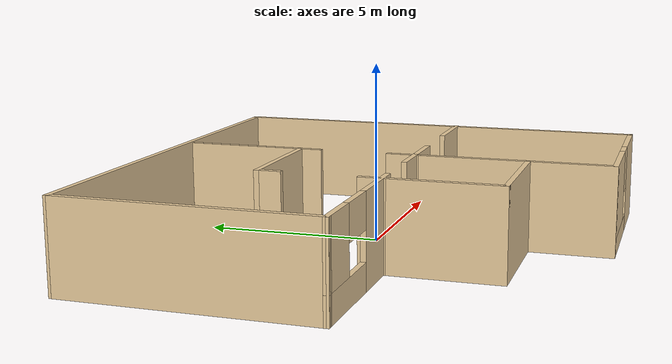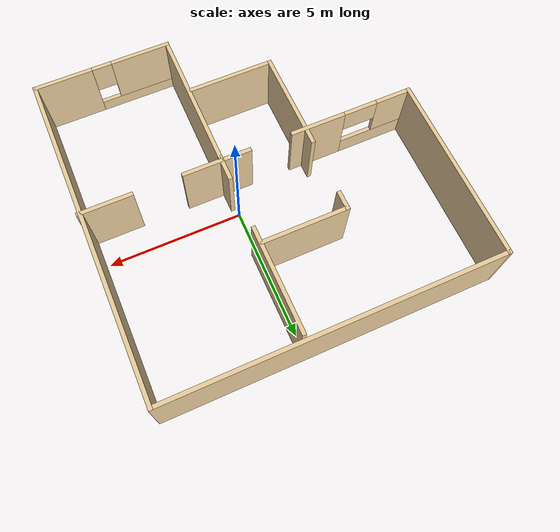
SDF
<?xml version='1.0'?>
<sdf version='1.6'>
  <model name='Building'>
    <pose frame=''>-0.957855 -0.363744 0 0 -0 0</pose>
    <link name='Wall_38'>
      <collision name='Wall_38_Collision'>
        <geometry>
          <box>
            <size>12.5 0.15 2.5</size>
          </box>
        </geometry>
        <pose frame=''>0 0 1.25 0 -0 0</pose>
      </collision>
      <visual name='Wall_38_Visual'>
        <pose frame=''>0 0 1.25 0 -0 0</pose>
        <geometry>
          <box>
            <size>12.5 0.15 2.5</size>
          </box>
        </geometry>
        <material>
          <script>
            <uri>file://media/materials/scripts/gazebo.material</uri>
            <name>Gazebo/Grey</name>
          </script>
          <ambient>0.921569 0.807843 0.615686 1</ambient>
        </material>
        <meta>
          <layer>0</layer>
        </meta>
      </visual>
      <pose frame=''>0.000267 6.17471 0 0 -0 0</pose>
    </link>
    <link name='Wall_41'>
      <collision name='Wall_41_Collision'>
        <geometry>
          <box>
            <size>12.5 0.15 2.5</size>
          </box>
        </geometry>
        <pose frame=''>0 0 1.25 0 -0 0</pose>
      </collision>
      <visual name='Wall_41_Visual'>
        <pose frame=''>0 0 1.25 0 -0 0</pose>
        <geometry>
          <box>
            <size>12.5 0.15 2.5</size>
          </box>
        </geometry>
        <material>
          <script>
            <uri>file://media/materials/scripts/gazebo.material</uri>
            <name>Gazebo/Grey</name>
          </script>
          <ambient>0.921569 0.807843 0.615686 1</ambient>
        </material>
        <meta>
          <layer>0</layer>
        </meta>
      </visual>
      <pose frame=''>6.17527 -0.000294 0 0 -0 -1.5708</pose>
    </link>
    <link name='Wall_42'>
      <pose frame=''>3.6309 -6.17529 0 0 -0 3.14159</pose>
      <visual name='Wall_42_Visual_0'>
        <pose frame=''>-1.50782 0 1.25 0 -0 0</pose>
        <geometry>
          <box>
            <size>2.22309 0.15 2.5</size>
          </box>
        </geometry>
        <material>
          <script>
            <uri>file://media/materials/scripts/gazebo.material</uri>
            <name>Gazebo/Grey</name>
          </script>
          <ambient>0.921569 0.807843 0.615686 1</ambient>
        </material>
        <meta>
          <layer>0</layer>
        </meta>
      </visual>
      <collision name='Wall_42_Collision_0'>
        <geometry>
          <box>
            <size>2.22309 0.15 2.5</size>
          </box>
        </geometry>
        <pose frame=''>-1.50782 0 1.25 0 -0 0</pose>
      </collision>
      <visual name='Wall_42_Visual_1'>
        <pose frame=''>1.11154 0 0.25 0 -0 0</pose>
        <geometry>
          <box>
            <size>3.01564 0.15 0.5</size>
          </box>
        </geometry>
        <material>
          <script>
            <uri>file://media/materials/scripts/gazebo.material</uri>
            <name>Gazebo/Grey</name>
          </script>
          <ambient>0.921569 0.807843 0.615686 1</ambient>
        </material>
        <meta>
          <layer>0</layer>
        </meta>
      </visual>
      <collision name='Wall_42_Collision_1'>
        <geometry>
          <box>
            <size>3.01564 0.15 0.5</size>
          </box>
        </geometry>
        <pose frame=''>1.11154 0 0.25 0 -0 0</pose>
      </collision>
      <visual name='Wall_42_Visual_2'>
        <pose frame=''>1.48516 0 1.5 0 -0 0</pose>
        <geometry>
          <box>
            <size>2.2684 0.15 2</size>
          </box>
        </geometry>
        <material>
          <script>
            <uri>file://media/materials/scripts/gazebo.material</uri>
            <name>Gazebo/Grey</name>
          </script>
          <ambient>0.921569 0.807843 0.615686 1</ambient>
        </material>
        <meta>
          <layer>0</layer>
        </meta>
      </visual>
      <collision name='Wall_42_Collision_2'>
        <geometry>
          <box>
            <size>2.2684 0.15 2</size>
          </box>
        </geometry>
        <pose frame=''>1.48516 0 1.5 0 -0 0</pose>
      </collision>
      <visual name='Wall_42_Visual_3'>
        <pose frame=''>-0.022658 0 1.9 0 -0 0</pose>
        <geometry>
          <box>
            <size>0.747237 0.15 1.2</size>
          </box>
        </geometry>
        <material>
          <script>
            <uri>file://media/materials/scripts/gazebo.material</uri>
            <name>Gazebo/Grey</name>
          </script>
          <ambient>0.921569 0.807843 0.615686 1</ambient>
        </material>
        <meta>
          <layer>0</layer>
        </meta>
      </visual>
      <collision name='Wall_42_Collision_3'>
        <geometry>
          <box>
            <size>0.747237 0.15 1.2</size>
          </box>
        </geometry>
        <pose frame=''>-0.022658 0 1.9 0 -0 0</pose>
      </collision>
    </link>
    <link name='Wall_43'>
      <collision name='Wall_43_Collision'>
        <geometry>
          <box>
            <size>5.5 0.15 2.5</size>
          </box>
        </geometry>
        <pose frame=''>0 0 1.25 0 -0 0</pose>
      </collision>
      <visual name='Wall_43_Visual'>
        <pose frame=''>0 0 1.25 0 -0 0</pose>
        <geometry>
          <box>
            <size>5.5 0.15 2.5</size>
          </box>
        </geometry>
        <material>
          <script>
            <uri>file://media/materials/scripts/gazebo.material</uri>
            <name>Gazebo/Grey</name>
          </script>
          <ambient>0.921569 0.807843 0.615686 1</ambient>
        </material>
        <meta>
          <layer>0</layer>
        </meta>
      </visual>
      <pose frame=''>1.08348 -3.50029 0 0 -0 1.56983</pose>
    </link>
    <link name='Wall_47'>
      <pose frame=''>-3.93129 -0.71225 0 0 -0 3.14159</pose>
      <visual name='Wall_47_Visual_0'>
        <pose frame=''>-1.33207 0 1.25 0 -0 0</pose>
        <geometry>
          <box>
            <size>2.09448 0.15 2.5</size>
          </box>
        </geometry>
        <material>
          <script>
            <uri>file://media/materials/scripts/gazebo.material</uri>
            <name>Gazebo/Grey</name>
          </script>
          <ambient>0.921569 0.807843 0.615686 1</ambient>
        </material>
        <meta>
          <layer>0</layer>
        </meta>
      </visual>
      <collision name='Wall_47_Collision_0'>
        <geometry>
          <box>
            <size>2.09448 0.15 2.5</size>
          </box>
        </geometry>
        <pose frame=''>-1.33207 0 1.25 0 -0 0</pose>
      </collision>
      <visual name='Wall_47_Visual_1'>
        <pose frame=''>1.04724 0 0.375 0 -0 0</pose>
        <geometry>
          <box>
            <size>2.66414 0.15 0.75</size>
          </box>
        </geometry>
        <material>
          <script>
            <uri>file://media/materials/scripts/gazebo.material</uri>
            <name>Gazebo/Grey</name>
          </script>
          <ambient>0.921569 0.807843 0.615686 1</ambient>
        </material>
        <meta>
          <layer>0</layer>
        </meta>
      </visual>
      <collision name='Wall_47_Collision_1'>
        <geometry>
          <box>
            <size>2.66414 0.15 0.75</size>
          </box>
        </geometry>
        <pose frame=''>1.04724 0 0.375 0 -0 0</pose>
      </collision>
      <visual name='Wall_47_Visual_2'>
        <pose frame=''>1.68374 0 1.625 0 -0 0</pose>
        <geometry>
          <box>
            <size>1.39114 0.15 1.75</size>
          </box>
        </geometry>
        <material>
          <script>
            <uri>file://media/materials/scripts/gazebo.material</uri>
            <name>Gazebo/Grey</name>
          </script>
          <ambient>0.921569 0.807843 0.615686 1</ambient>
        </material>
        <meta>
          <layer>0</layer>
        </meta>
      </visual>
      <collision name='Wall_47_Collision_2'>
        <geometry>
          <box>
            <size>1.39114 0.15 1.75</size>
          </box>
        </geometry>
        <pose frame=''>1.68374 0 1.625 0 -0 0</pose>
      </collision>
      <visual name='Wall_47_Visual_3'>
        <pose frame=''>0.351672 0 2.025 0 -0 0</pose>
        <geometry>
          <box>
            <size>1.273 0.15 0.95</size>
          </box>
        </geometry>
        <material>
          <script>
            <uri>file://media/materials/scripts/gazebo.material</uri>
            <name>Gazebo/Grey</name>
          </script>
          <ambient>0.921569 0.807843 0.615686 1</ambient>
        </material>
        <meta>
          <layer>0</layer>
        </meta>
      </visual>
      <collision name='Wall_47_Collision_3'>
        <geometry>
          <box>
            <size>1.273 0.15 0.95</size>
          </box>
        </geometry>
        <pose frame=''>0.351672 0 2.025 0 -0 0</pose>
      </collision>
    </link>
    <link name='Wall_48'>
      <collision name='Wall_48_Collision'>
        <geometry>
          <box>
            <size>7.03723 0.15 2.5</size>
          </box>
        </geometry>
        <pose frame=''>0 0 1.25 0 -0 0</pose>
      </collision>
      <visual name='Wall_48_Visual'>
        <pose frame=''>0 0 1.25 0 -0 0</pose>
        <geometry>
          <box>
            <size>7.03723 0.15 2.5</size>
          </box>
        </geometry>
        <material>
          <script>
            <uri>file://media/materials/scripts/gazebo.material</uri>
            <name>Gazebo/Grey</name>
          </script>
          <ambient>0.921569 0.807843 0.615686 1</ambient>
        </material>
        <meta>
          <layer>0</layer>
        </meta>
      </visual>
      <pose frame=''>-6.20517 2.73123 0 0 -0 1.56196</pose>
    </link>
    <link name='Wall_50'>
      <collision name='Wall_50_Collision'>
        <geometry>
          <box>
            <size>3.25 0.15 2.5</size>
          </box>
        </geometry>
        <pose frame=''>0 0 1.25 0 -0 0</pose>
      </collision>
      <visual name='Wall_50_Visual'>
        <pose frame=''>0 0 1.25 0 -0 0</pose>
        <geometry>
          <box>
            <size>3.25 0.15 2.5</size>
          </box>
        </geometry>
        <material>
          <script>
            <uri>file://media/materials/scripts/gazebo.material</uri>
            <name>Gazebo/Grey</name>
          </script>
          <ambient>0.921569 0.807843 0.615686 1</ambient>
        </material>
        <meta>
          <layer>0</layer>
        </meta>
      </visual>
      <pose frame=''>-2.12379 -2.30975 0 0 -0 -1.5708</pose>
    </link>
    <link name='Wall_51'>
      <collision name='Wall_51_Collision'>
        <geometry>
          <box>
            <size>3.25 0.15 2.5</size>
          </box>
        </geometry>
        <pose frame=''>0 0 1.25 0 -0 0</pose>
      </collision>
      <visual name='Wall_51_Visual'>
        <pose frame=''>0 0 1.25 0 -0 0</pose>
        <geometry>
          <box>
            <size>3.25 0.15 2.5</size>
          </box>
        </geometry>
        <material>
          <script>
            <uri>file://media/materials/scripts/gazebo.material</uri>
            <name>Gazebo/Grey</name>
          </script>
          <ambient>0.921569 0.807843 0.615686 1</ambient>
        </material>
        <meta>
          <layer>0</layer>
        </meta>
      </visual>
      <pose frame=''>-0.573789 -3.85975 0 0 -0 0</pose>
    </link>
    <link name='Wall_53'>
      <collision name='Wall_53_Collision'>
        <geometry>
          <box>
            <size>0.75 0.15 2.5</size>
          </box>
        </geometry>
        <pose frame=''>0 0 1.25 0 -0 0</pose>
      </collision>
      <visual name='Wall_53_Visual'>
        <pose frame=''>0 0 1.25 0 -0 0</pose>
        <geometry>
          <box>
            <size>0.75 0.15 2.5</size>
          </box>
        </geometry>
        <material>
          <script>
            <uri>file://media/materials/scripts/gazebo.material</uri>
            <name>Gazebo/Grey</name>
          </script>
          <ambient>0.921569 0.807843 0.615686 1</ambient>
        </material>
        <meta>
          <layer>0</layer>
        </meta>
      </visual>
      <pose frame=''>-2.12379 -0.459747 0 0 -0 1.5708</pose>
    </link>
    <link name='Wall_60'>
      <collision name='Wall_60_Collision'>
        <geometry>
          <box>
            <size>1 0.15 2.5</size>
          </box>
        </geometry>
        <pose frame=''>0 0 1.25 0 -0 0</pose>
      </collision>
      <visual name='Wall_60_Visual'>
        <pose frame=''>0 0 1.25 0 -0 0</pose>
        <geometry>
          <box>
            <size>1 0.15 2.5</size>
          </box>
        </geometry>
        <material>
          <script>
            <uri>file://media/materials/scripts/gazebo.material</uri>
            <name>Gazebo/Grey</name>
          </script>
          <ambient>0.921569 0.807843 0.615686 1</ambient>
        </material>
        <meta>
          <layer>0</layer>
        </meta>
      </visual>
      <pose frame=''>1.08606 -0.400294 0 0 -0 1.5708</pose>
    </link>
    <link name='Wall_66'>
      <collision name='Wall_66_Collision'>
        <geometry>
          <box>
            <size>4 0.15 2.5</size>
          </box>
        </geometry>
        <pose frame=''>0 0 1.25 0 -0 0</pose>
      </collision>
      <visual name='Wall_66_Visual'>
        <pose frame=''>0 0 1.25 0 -0 0</pose>
        <geometry>
          <box>
            <size>4 0.15 2.5</size>
          </box>
        </geometry>
        <material>
          <script>
            <uri>file://media/materials/scripts/gazebo.material</uri>
            <name>Gazebo/Grey</name>
          </script>
          <ambient>0.921569 0.807843 0.615686 1</ambient>
        </material>
        <meta>
          <layer>0</layer>
        </meta>
      </visual>
      <pose frame=''>1.08707 4.01554 0 0 -0 1.5708</pose>
    </link>
    <link name='Wall_72'>
      <collision name='Wall_72_Collision'>
        <geometry>
          <box>
            <size>3.25 0.15 2.5</size>
          </box>
        </geometry>
        <pose frame=''>0 0 1.25 0 -0 0</pose>
      </collision>
      <visual name='Wall_72_Visual'>
        <pose frame=''>0 0 1.25 0 -0 0</pose>
        <geometry>
          <box>
            <size>3.25 0.15 2.5</size>
          </box>
        </geometry>
        <material>
          <script>
            <uri>file://media/materials/scripts/gazebo.material</uri>
            <name>Gazebo/Grey</name>
          </script>
          <ambient>0.921569 0.807843 0.615686 1</ambient>
        </material>
        <meta>
          <layer>0</layer>
        </meta>
      </visual>
      <pose frame=''>-0.521013 2.65632 0 0 -0 3.14159</pose>
    </link>
    <link name='Wall_73'>
      <collision name='Wall_73_Collision'>
        <geometry>
          <box>
            <size>0.75 0.15 2.5</size>
          </box>
        </geometry>
        <pose frame=''>0 0 1.25 0 -0 0</pose>
      </collision>
      <visual name='Wall_73_Visual'>
        <pose frame=''>0 0 1.25 0 -0 0</pose>
        <geometry>
          <box>
            <size>0.75 0.15 2.5</size>
          </box>
        </geometry>
        <material>
          <script>
            <uri>file://media/materials/scripts/gazebo.material</uri>
            <name>Gazebo/Grey</name>
          </script>
          <ambient>0.921569 0.807843 0.615686 1</ambient>
        </material>
        <meta>
          <layer>0</layer>
        </meta>
      </visual>
      <pose frame=''>-2.07101 2.35632 0 0 -0 -1.5708</pose>
    </link>
    <link name='Wall_84'>
      <collision name='Wall_84_Collision'>
        <geometry>
          <box>
            <size>1.22684 0.15 2.5</size>
          </box>
        </geometry>
        <pose frame=''>0 0 1.25 0 -0 0</pose>
      </collision>
      <visual name='Wall_84_Visual'>
        <pose frame=''>0 0 1.25 0 -0 0</pose>
        <geometry>
          <box>
            <size>1.22684 0.15 2.5</size>
          </box>
        </geometry>
        <material>
          <script>
            <uri>file://media/materials/scripts/gazebo.material</uri>
            <name>Gazebo/Grey</name>
          </script>
          <ambient>0.921569 0.807843 0.615686 1</ambient>
        </material>
        <meta>
          <layer>0</layer>
        </meta>
      </visual>
      <pose frame=''>0.587939 -0.711397 0 0 -0 -0.001331</pose>
    </link>
    <link name='Wall_93'>
      <collision name='Wall_93_Collision'>
        <geometry>
          <box>
            <size>2 0.15 2.5</size>
          </box>
        </geometry>
        <pose frame=''>0 0 1.25 0 -0 0</pose>
      </collision>
      <visual name='Wall_93_Visual'>
        <pose frame=''>0 0 1.25 0 -0 0</pose>
        <geometry>
          <box>
            <size>2 0.15 2.5</size>
          </box>
        </geometry>
        <material>
          <script>
            <uri>file://media/materials/scripts/gazebo.material</uri>
            <name>Gazebo/Grey</name>
          </script>
          <ambient>0.921569 0.807843 0.615686 1</ambient>
        </material>
        <meta>
          <layer>0</layer>
        </meta>
      </visual>
      <pose frame=''>5.31126 -0.712114 0 0 -0 3.14159</pose>
    </link>
    <link name='Wall_95'>
      <collision name='Wall_95_Collision'>
        <geometry>
          <box>
            <size>1.5 0.15 2.5</size>
          </box>
        </geometry>
        <pose frame=''>0 0 1.25 0 -0 0</pose>
      </collision>
      <visual name='Wall_95_Visual'>
        <pose frame=''>0 0 1.25 0 -0 0</pose>
        <geometry>
          <box>
            <size>1.5 0.15 2.5</size>
          </box>
        </geometry>
        <material>
          <script>
            <uri>file://media/materials/scripts/gazebo.material</uri>
            <name>Gazebo/Grey</name>
          </script>
          <ambient>0.921569 0.807843 0.615686 1</ambient>
        </material>
        <meta>
          <layer>0</layer>
        </meta>
      </visual>
      <pose frame=''>1.80136 -0.712114 0 0 -0 3.14159</pose>
    </link>
    <static>1</static>
  </model>
</sdf>
